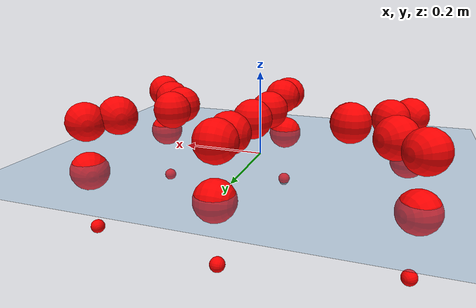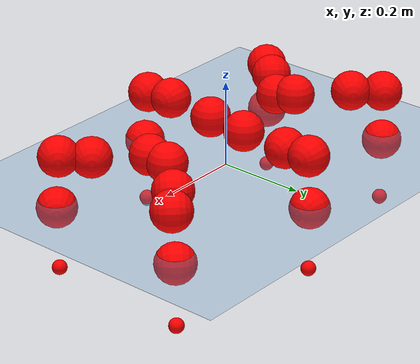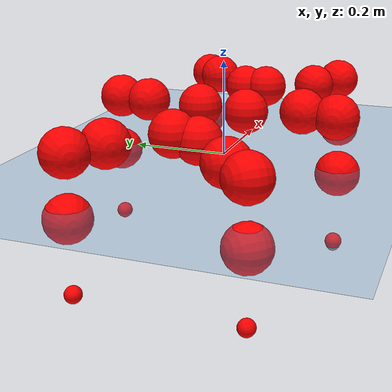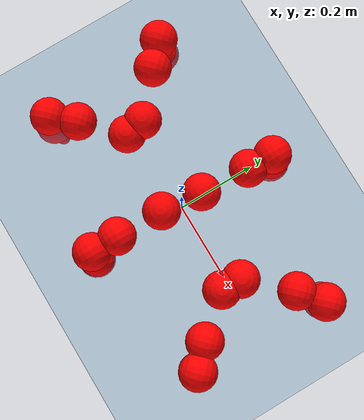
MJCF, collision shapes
<mujoco model="Golem">
  <compiler angle="radian" assetdir="assets" balanceinertia="true" inertiafromgeom="false"/>

  <option timestep="0.005" density="1.2" viscosity="2e-05"/>

  <size nkey="1"/>

  <visual>
    <quality shadowsize="8192"/>
    <map shadowclip="0.5"/>
  </visual>

  <default>
    <default class="/">
      <joint armature="0.01" damping="0.01" frictionloss="0.01"/>
      <geom contype="0" conaffinity="0" group="1" solref="-1000 -80"/>
      <site size="0.01 0.005 0.005" group="5"/>
      <general forcelimited="true" biastype="affine" gainprm="25" biasprm="0 -25 -0.5"/>
      <default class="visual">
        <geom type="mesh" group="2"/>
      </default>
      <default class="collision">
        <geom group="3"/>
      </default>
      <default class="foot">
        <geom size="0.01 0 0" condim="6" group="4" priority="1" solimp="0.015 1 0.01"/>
      </default>
      <default class="reward_collision_sphere">
        <geom group="5" rgba="1 0 0 1"/>
      </default>
    </default>
  </default>

  <asset>
    <texture type="skybox" colorspace="auto" name="//unnamed_texture_0" builtin="gradient" rgb1="0.95 0.95 0.95" rgb2="0.95 0.95 0.95" width="100" height="600"/>
    <texture type="2d" colorspace="auto" name="texplane" builtin="checker" rgb1="0.345 0.575 0.748" rgb2="0.345 0.575 0.748" markrgb="1 1 1" width="512" height="512"/>
    <material name="MatPlane" class="/" texture="texplane" texuniform="true" texrepeat="2 2" specular="0.9"/>
    <mesh name="body" class="/" file="body.stl" scale="0.001 0.001 0.001"/>
    <mesh name="coxa" class="/" file="coxa.stl" scale="0.001 0.001 0.001"/>
    <mesh name="femur" class="/" file="femur.stl" scale="0.001 0.001 0.001"/>
    <mesh name="tibia" class="/" file="tibia.stl" scale="0.001 0.001 0.001"/>
    <mesh name="tarsus" class="/" file="tarsus.stl" scale="0.001 0.001 0.001"/>
  </asset>

  <worldbody>
    <geom name="floor" class="/" size="100 100 0.125" type="plane" group="0" material="MatPlane"/>
    <light name="toplight_shadow" class="/" pos="0 0 5" dir="0.0990148 0.0990148 -0.990148" type="directional" ambient="0.04 0.04 0.04" diffuse="0.55 0.55 0.55" specular="0.12 0.12 0.12"/>
    <light name="toplight_fill" class="/" pos="0 0 5" dir="0.0990148 0.0990148 -0.990148" type="directional" castshadow="false" ambient="0.04 0.04 0.04" diffuse="0.3 0.3 0.3" specular="0.08 0.08 0.08"/>
    <body name="trunk" pos="0.0011704 0.000476749 0.00791285" quat="0.999999 0.00028969 -0.000712861 -0.000867956">
      <inertial pos="0.000982779 -0.00588591 0.00600272" quat="0.999965 -0.00386342 0.000606093 0.00745088" mass="5.22964" diaginertia="0.0482701 0.00128993 0.046115"/>
      <joint name="//unnamed_joint_0" type="free"/>
      <geom name="//unnamed_geom_1" class="/" pos="0 0 0.0884938" quat="1 0 0 0" type="mesh" rgba="0.9 0.9 0.9 1" mesh="body"/>
      <site name="imu" class="/" pos="0.191426 -0.00239589 0.105392" size="0.0114903"/>
      <camera name="track" class="/" pos="0 -1.34183 0" quat="0.707107 0.707107 0 0" mode="trackcom"/>
      <camera name="ego_camera" class="/" pos="0.18115 0 0.138272" quat="-0.5 -0.5 0.5 0.5"/>
      <body name="coxa_RR" pos="-0.240371 -0.0569736 0.0841598" quat="0.382142 -0.003887 0.00278347 -0.924091">
        <inertial pos="0.00906596 0.00385787 0.00192343" quat="0.999432 0.0327643 0.00133703 -0.00772872" mass="0.290129" diaginertia="0.0526217 0.00135906 0.0550273"/>
        <joint name="coxa_joint_RR" class="/" pos="0 0 0" axis="-0.00339482 0.0060821 -0.999976" stiffness="0.00864283" range="-3.09292 3.1622" armature="0.0116809" damping="0" frictionloss="0.00759341"/>
        <geom name="//unnamed_geom_2" class="/" type="mesh" rgba="0.2 0.2 0.2 1" mesh="coxa"/>
        <geom name="//unnamed_geom_3" class="reward_collision_sphere" size="0.0459612" pos="-0.0418038 0 0"/>
        <body name="femur_RR" pos="0.0815121 -0.00186338 -0.00526802" quat="0.499745 -0.500104 0.500164 0.499987">
          <inertial pos="-0.00233709 0.00147326 -0.00778805" quat="0.999998 0.000121612 -0.0017093 0.000536792" mass="0.311054" diaginertia="0.0542896 0.00140261 0.0573427"/>
          <joint name="femur_joint_RR" class="/" pos="0 0 0" axis="0.0231472 -0.024897 -0.999422" range="-3.14325 3.11838" armature="0.012825" damping="0.0297001" frictionloss="0.0117469"/>
          <geom name="//unnamed_geom_4" class="/" type="mesh" rgba="0.9 0.9 0.9 1" mesh="femur"/>
          <geom name="//unnamed_geom_5" class="reward_collision_sphere" size="0.0459612"/>
          <body name="tibia_RR" pos="0.00459191 -0.0713332 0.00396389" quat="0.000144796 1 -0.00010162 4.43487e-05">
            <inertial pos="0.00205122 -0.00692463 0.00786954" quat="0.999397 0.0302647 -0.00176657 -0.0169257" mass="0.305528" diaginertia="0.0586444 0.00143566 0.0528705"/>
            <joint name="tibia_joint_RR" class="/" pos="0 0 0" axis="0.00476809 -0.00598132 0.999971" stiffness="0.00758574" range="-3.14578 3.23859" armature="0.0105262" damping="0" frictionloss="0.0124469"/>
            <geom name="//unnamed_geom_6" class="/" type="mesh" rgba="0.2 0.2 0.2 1" mesh="tibia"/>
            <geom name="//unnamed_geom_7" class="reward_collision_sphere" size="0.0459612"/>
            <body name="tarsus_RR" pos="0.12115 0.0073544 0.00203355" quat="0.999993 0.00213671 0.00252295 -0.00164637">
              <inertial pos="0.0827923 0.00880472 -0.00135294" quat="0.501859 0.500771 0.496322 0.501029" mass="0.318648" diaginertia="0.0520041 0.00120152 0.0494599"/>
              <joint name="tarsus_joint_RR" class="/" pos="0 0 0" axis="0.00326071 -0.00966863 0.999948" stiffness="0.00658051" range="-3.14803 3.09826" armature="0.0121838" damping="0.0294957" frictionloss="0.0107188"/>
              <geom name="//unnamed_geom_8" class="/" type="mesh" rgba="0.9 0.9 0.9 1" mesh="tarsus"/>
              <geom name="foot_1" class="foot" size="0.01097" pos="0.156068 0 0" quat="0 -0.707107 0 0.707107"/>
              <geom name="//unnamed_geom_10" class="reward_collision_sphere" size="0.0459612"/>
              <geom name="//unnamed_geom_11" class="reward_collision_sphere" size="0.0172355" pos="0.149797 0 0"/>
              <site name="foot_1" class="foot" pos="0.156068 0 0" quat="0 -0.707107 0 0.707107" size="0.0114903"/>
            </body>
          </body>
        </body>
      </body>
      <body name="coxa_RM" pos="-0.00884236 -0.0932364 0.0918774" quat="0.706154 -0.00114054 0.00113357 -0.708056">
        <inertial pos="0.000860189 0.00375856 0.00978094" quat="0.999999 0.00103039 0.00040919 -0.00022023" mass="0.318728" diaginertia="0.0597897 0.0015758 0.0529596"/>
        <joint name="coxa_joint_RM" class="/" pos="0 0 0" axis="-0.00420779 -0.00219114 -0.999989" range="-3.15046 3.11105" armature="0.0129211" damping="0.00688816" frictionloss="0.00923004"/>
        <geom name="//unnamed_geom_12" class="/" type="mesh" rgba="0.2 0.2 0.2 1" mesh="coxa"/>
        <geom name="//unnamed_geom_13" class="reward_collision_sphere" size="0.0459612" pos="-0.0418038 0 0"/>
        <body name="femur_RM" pos="0.0777215 -0.000702639 0.0102199" quat="0.497915 -0.497465 0.50287 0.501728">
          <inertial pos="-0.000663538 0.00381908 0.00191642" quat="0.999134 -0.00899214 -0.0371272 0.0165031" mass="0.304932" diaginertia="0.0481696 0.00140492 0.0496163"/>
          <joint name="femur_joint_RM" class="/" pos="0 0 0" axis="-0.00227503 -0.00248702 -0.999994" stiffness="0.00500654" range="-3.01239 3.01058" armature="0.00614341" damping="0" frictionloss="0.0103327"/>
          <geom name="//unnamed_geom_14" class="/" type="mesh" rgba="0.9 0.9 0.9 1" mesh="femur"/>
          <geom name="//unnamed_geom_15" class="reward_collision_sphere" size="0.0459612"/>
          <body name="tibia_RM" pos="0.00479347 -0.0692903 0.000769814" quat="-0.00031646 1 0.000208504 -5.75863e-05">
            <inertial pos="0.000788307 0.00251131 0.0074955" quat="0.999532 0.0278613 -0.00233253 0.0124247" mass="0.358511" diaginertia="0.0559108 0.00146391 0.0495188"/>
            <joint name="tibia_joint_RM" class="/" pos="0 0 0" axis="0.00267755 -0.00424698 0.999987" range="-3.01772 3.26858" armature="0.015273" damping="0.0189364" frictionloss="0.0119453"/>
            <geom name="//unnamed_geom_16" class="/" type="mesh" rgba="0.2 0.2 0.2 1" mesh="tibia"/>
            <geom name="//unnamed_geom_17" class="reward_collision_sphere" size="0.0459612"/>
            <body name="tarsus_RM" pos="0.119722 0.00611931 -0.00880914" quat="1 0.000350259 -0.000722113 -0.000229829">
              <inertial pos="0.0854287 0.00157628 0.00198581" quat="0.499398 0.506932 0.479114 0.513879" mass="0.304108" diaginertia="0.0519924 0.00136439 0.0501027"/>
              <joint name="tarsus_joint_RM" class="/" pos="0 0 0" axis="-0.0022958 -0.0021268 0.999995" stiffness="0.0252714" range="-3.09944 2.93787" armature="0.0115361" damping="0.0462117" frictionloss="0.0108934"/>
              <geom name="//unnamed_geom_18" class="/" type="mesh" rgba="0.9 0.9 0.9 1" mesh="tarsus"/>
              <geom name="foot_2" class="foot" size="0.0145296" pos="0.156068 0 0" quat="0 -0.707107 0 0.707107"/>
              <geom name="//unnamed_geom_20" class="reward_collision_sphere" size="0.0459612"/>
              <geom name="//unnamed_geom_21" class="reward_collision_sphere" size="0.0172355" pos="0.149797 0 0"/>
              <site name="foot_2" class="foot" pos="0.156068 0 0" quat="0 -0.707107 0 0.707107" size="0.0114903"/>
            </body>
          </body>
        </body>
      </body>
      <body name="coxa_RF" pos="0.251412 -0.0548551 0.0937786" quat="0.924861 -0.00213705 -0.00150431 -0.380297">
        <inertial pos="-0.00761268 0.00730259 -0.00100741" quat="0.999995 0.00173605 -0.00100393 -0.00227996" mass="0.300087" diaginertia="0.0484223 0.00133566 0.052214"/>
        <joint name="coxa_joint_RF" class="/" pos="0 0 0" axis="0.0205462 0.0275725 -0.999409" range="-3.15256 3.10717" armature="0.0107064" damping="0.0251606" frictionloss="0.0122952"/>
        <geom name="//unnamed_geom_22" class="/" type="mesh" rgba="0.2 0.2 0.2 1" mesh="coxa"/>
        <geom name="//unnamed_geom_23" class="reward_collision_sphere" size="0.0459612" pos="-0.0418038 0 0"/>
        <body name="femur_RF" pos="0.0825412 -0.0101222 -0.00652483" quat="0.50198 -0.496669 0.502892 0.498434">
          <inertial pos="0.00136238 -0.00215409 0.00195996" quat="0.999861 0.00759841 -0.0137306 -0.00571162" mass="0.311074" diaginertia="0.054281 0.00142511 0.0505817"/>
          <joint name="femur_joint_RF" class="/" pos="0 0 0" axis="-0.000462523 -0.0018747 -0.999998" stiffness="0.0242485" range="-3.19076 3.07564" armature="0.010254" damping="0.00377617" frictionloss="0.0103764"/>
          <geom name="//unnamed_geom_24" class="/" type="mesh" rgba="0.9 0.9 0.9 1" mesh="femur"/>
          <geom name="//unnamed_geom_25" class="reward_collision_sphere" size="0.0459612"/>
          <body name="tibia_RF" pos="-0.00588115 -0.0711308 0.00176664" quat="0.000170955 1 -0.000266107 -0.000348638">
            <inertial pos="-0.00272721 0.00582631 0.00103162" quat="0.999965 0.00813508 -0.00172483 -0.00115184" mass="0.331704" diaginertia="0.0584726 0.00148508 0.0511271"/>
            <joint name="tibia_joint_RF" class="/" pos="0 0 0" axis="0.0100783 -0.000624809 0.999949" stiffness="0.0315262" range="-3.10151 3.26501" armature="0.0111086" damping="0.0617331" frictionloss="0.0113191"/>
            <geom name="//unnamed_geom_26" class="/" type="mesh" rgba="0.2 0.2 0.2 1" mesh="tibia"/>
            <geom name="//unnamed_geom_27" class="reward_collision_sphere" size="0.0459612"/>
            <body name="tarsus_RF" pos="0.122826 0.00741123 -0.00095983" quat="0.999997 0.000347018 -0.00139546 -0.00187613">
              <inertial pos="0.0835545 0.00189675 8.39184e-05" quat="0.501085 0.501471 0.498745 0.498692" mass="0.3071" diaginertia="0.0527718 0.00126439 0.0531077"/>
              <joint name="tarsus_joint_RF" class="/" pos="0 0 0" axis="0.000339707 -0.00732014 0.999973" range="-3.17782 3.12146" armature="0.0120243" damping="0.00310795" frictionloss="0.0105928"/>
              <geom name="//unnamed_geom_28" class="/" type="mesh" rgba="0.9 0.9 0.9 1" mesh="tarsus"/>
              <geom name="foot_3" class="foot" size="0.0107169" pos="0.156068 0 0" quat="0 -0.707107 0 0.707107"/>
              <geom name="//unnamed_geom_30" class="reward_collision_sphere" size="0.0459612"/>
              <geom name="//unnamed_geom_31" class="reward_collision_sphere" size="0.0172355" pos="0.149797 0 0"/>
              <site name="foot_3" class="foot" pos="0.156068 0 0" quat="0 -0.707107 0 0.707107" size="0.0114903"/>
            </body>
          </body>
        </body>
      </body>
      <body name="coxa_LR" pos="-0.24787 0.0501227 0.0947512" quat="0.382606 5.86858e-05 2.74978e-05 0.923912">
        <inertial pos="-0.000937017 0.00101336 0.00537039" quat="0.999708 -0.0144656 -0.000308398 -0.0193648" mass="0.343908" diaginertia="0.0586183 0.00140181 0.0551076"/>
        <joint name="coxa_joint_LR" class="/" pos="0 0 0" axis="0.0274597 0.01355 -0.999531" range="-3.1616 3.1105" armature="0.010718" damping="0.010479" frictionloss="0.00829403"/>
        <geom name="//unnamed_geom_32" class="/" type="mesh" rgba="0.2 0.2 0.2 1" mesh="coxa"/>
        <geom name="//unnamed_geom_33" class="reward_collision_sphere" size="0.0459612" pos="-0.0418038 0 0"/>
        <body name="femur_LR" pos="0.0885985 0.00890225 0.000635312" quat="0.50172 -0.499113 0.500424 0.498737">
          <inertial pos="-0.002162 0.00211078 0.00908436" quat="0.999906 0.00842506 -0.0081833 -0.00711852" mass="0.319749" diaginertia="0.0576265 0.00147685 0.0541314"/>
          <joint name="femur_joint_LR" class="/" pos="0 0 0" axis="0.0460967 -0.00290966 0.998933" stiffness="0.004035" range="-3.12885 3.14643" armature="0.00926593" damping="0" frictionloss="0.010556"/>
          <geom name="//unnamed_geom_34" class="/" type="mesh" rgba="0.9 0.9 0.9 1" mesh="femur"/>
          <geom name="//unnamed_geom_35" class="reward_collision_sphere" size="0.0459612"/>
          <body name="tibia_LR" pos="0.00565312 -0.0740211 0.00454431" quat="3.68492e-05 1 -0.000838878 -0.000214978">
            <inertial pos="-0.0016273 -0.00696384 -0.00216682" quat="0.999995 0.000635502 0.00231586 -0.00190668" mass="0.288278" diaginertia="0.0551608 0.00127942 0.0444181"/>
            <joint name="tibia_joint_LR" class="/" pos="0 0 0" axis="-0.0157178 -0.047847 -0.998731" range="-3.26149 3.3421" armature="0.00602229" damping="0.0457012" frictionloss="0.00891119"/>
            <geom name="//unnamed_geom_36" class="/" type="mesh" rgba="0.2 0.2 0.2 1" mesh="tibia"/>
            <geom name="//unnamed_geom_37" class="reward_collision_sphere" size="0.0459612"/>
            <body name="tarsus_LR" pos="0.122695 0.00189035 0.000983455" quat="1 0.000101625 5.22469e-05 -7.03119e-05">
              <inertial pos="0.0745223 -0.00134429 0.0101853" quat="0.500025 0.499498 0.499269 0.501206" mass="0.303723" diaginertia="0.0483784 0.00131083 0.0502256"/>
              <joint name="tarsus_joint_LR" class="/" pos="0 0 0" axis="-0.0022561 0.0121553 -0.999924" range="-3.21444 3.20416" armature="0.014641" damping="0" frictionloss="0.0111903"/>
              <geom name="//unnamed_geom_38" class="/" type="mesh" rgba="0.9 0.9 0.9 1" mesh="tarsus"/>
              <geom name="foot_4" class="foot" size="0.0120963" pos="0.156068 0 0" quat="0.707107 0 -0.707107 0"/>
              <geom name="//unnamed_geom_40" class="reward_collision_sphere" size="0.0459612"/>
              <geom name="//unnamed_geom_41" class="reward_collision_sphere" size="0.0172355" pos="0.149797 0 0"/>
              <site name="foot_4" class="foot" pos="0.156068 0 0" quat="0.707107 0 -0.707107 0" size="0.0114903"/>
            </body>
          </body>
        </body>
      </body>
      <body name="coxa_LM" pos="0.0010716 0.0942487 0.0930622" quat="0.707061 -0.000186084 9.37365e-05 0.707153">
        <inertial pos="0.000349037 0.00760295 -0.00945837" quat="0.999929 -0.000212 -0.010765 0.00509272" mass="0.287115" diaginertia="0.0527022 0.00134433 0.0513695"/>
        <joint name="coxa_joint_LM" class="/" pos="0 0 0" axis="0.0306317 -0.00443364 -0.999521" range="-3.1769 3.15657" armature="0.0168227" damping="0" frictionloss="0.0111227"/>
        <geom name="//unnamed_geom_42" class="/" type="mesh" rgba="0.2 0.2 0.2 1" mesh="coxa"/>
        <geom name="//unnamed_geom_43" class="reward_collision_sphere" size="0.0459612" pos="-0.0418038 0 0"/>
        <body name="femur_LM" pos="0.0814879 -0.00840937 0.00108686" quat="0.499845 -0.499806 0.499787 0.500561">
          <inertial pos="0.00890184 -0.00368539 0.00400466" quat="0.999948 0.00442762 0.0039216 0.00831436" mass="0.326377" diaginertia="0.0580878 0.00143593 0.0558633"/>
          <joint name="femur_joint_LM" class="/" pos="0 0 0" axis="0.0386359 0.0100013 0.999203" range="-3.13123 3.14471" armature="0.0108586" damping="0.0199651" frictionloss="0.00818181"/>
          <geom name="//unnamed_geom_44" class="/" type="mesh" rgba="0.9 0.9 0.9 1" mesh="femur"/>
          <geom name="//unnamed_geom_45" class="reward_collision_sphere" size="0.0459612"/>
          <body name="tibia_LM" pos="-0.00268928 -0.0659825 -0.00195612" quat="6.31119e-06 1 -6.7183e-05 4.90742e-06">
            <inertial pos="0.000881417 0.00158905 -0.00506818" quat="0.999583 0.0168159 0.0229886 0.00485137" mass="0.329707" diaginertia="0.0518297 0.00135172 0.0535901"/>
            <joint name="tibia_joint_LM" class="/" pos="0 0 0" axis="0.00242612 -0.00123022 -0.999996" range="-3.10252 2.996" armature="0.0125236" damping="0.021543" frictionloss="0.0103901"/>
            <geom name="//unnamed_geom_46" class="/" type="mesh" rgba="0.2 0.2 0.2 1" mesh="tibia"/>
            <geom name="//unnamed_geom_47" class="reward_collision_sphere" size="0.0459612"/>
            <body name="tarsus_LM" pos="0.12264 0.00753205 0.00233815" quat="1 0.000202887 -8.81038e-05 -0.000193766">
              <inertial pos="0.0752744 0.00105645 0.00074789" quat="0.500168 0.499075 0.500251 0.500505" mass="0.304592" diaginertia="0.0510697 0.00132675 0.0461384"/>
              <joint name="tarsus_joint_LM" class="/" pos="0 0 0" axis="0.00871144 -0.00614771 -0.999943" stiffness="0.0285826" range="-3.181 3.10055" armature="0.0123291" damping="0.0427634" frictionloss="0.0114372"/>
              <geom name="//unnamed_geom_48" class="/" type="mesh" rgba="0.9 0.9 0.9 1" mesh="tarsus"/>
              <geom name="foot_5" class="foot" size="0.0119417" pos="0.156068 0 0" quat="0.707107 0 -0.707107 0"/>
              <geom name="//unnamed_geom_50" class="reward_collision_sphere" size="0.0459612"/>
              <geom name="//unnamed_geom_51" class="reward_collision_sphere" size="0.0172355" pos="0.149797 0 0"/>
              <site name="foot_5" class="foot" pos="0.156068 0 0" quat="0.707107 0 -0.707107 0" size="0.0114903"/>
            </body>
          </body>
        </body>
      </body>
      <body name="coxa_LF" pos="0.252688 0.05497 0.0911387" quat="0.923782 -0.000840998 -0.000317204 0.382917">
        <inertial pos="-0.00542678 -0.002371 -0.00052889" quat="0.999195 0.0152427 0.033837 -0.0152263" mass="0.312662" diaginertia="0.0462748 0.00137397 0.0505415"/>
        <joint name="coxa_joint_LF" class="/" pos="0 0 0" axis="0.000276606 -0.000180219 -1" range="-3.10728 3.28187" armature="0.0129939" damping="0.013483" frictionloss="0.0103336"/>
        <geom name="//unnamed_geom_52" class="/" type="mesh" rgba="0.2 0.2 0.2 1" mesh="coxa"/>
        <geom name="//unnamed_geom_53" class="reward_collision_sphere" size="0.0459612" pos="-0.0418038 0 0"/>
        <body name="femur_LF" pos="0.0905349 0.00476746 0.0019504" quat="0.500158 -0.49963 0.499886 0.500325">
          <inertial pos="0.00624982 -0.00504016 -0.00196997" quat="0.999971 -0.00251054 0.00676128 -0.00229538" mass="0.305892" diaginertia="0.0568405 0.00139808 0.0509152"/>
          <joint name="femur_joint_LF" class="/" pos="0 0 0" axis="-0.0392977 0.000592471 0.999227" stiffness="0.0220584" range="-2.99168 3.17816" armature="0.0114785" damping="0.030043" frictionloss="0.0116604"/>
          <geom name="//unnamed_geom_54" class="/" type="mesh" rgba="0.9 0.9 0.9 1" mesh="femur"/>
          <geom name="//unnamed_geom_55" class="reward_collision_sphere" size="0.0459612"/>
          <body name="tibia_LF" pos="0.0084942 -0.0732635 -0.00736153" quat="0.00187876 0.999997 -0.000754384 0.00135732">
            <inertial pos="0.00600976 0.00041949 -0.00131209" quat="0.998751 -0.0409336 -0.0277966 0.00687851" mass="0.269089" diaginertia="0.0550599 0.00138095 0.0506639"/>
            <joint name="tibia_joint_LF" class="/" pos="0 0 0" axis="0.00374325 -0.00212079 -0.999991" stiffness="0.0191791" range="-3.15273 3.09889" armature="0.012744" damping="0.0367919" frictionloss="0.0107579"/>
            <geom name="//unnamed_geom_56" class="/" type="mesh" rgba="0.2 0.2 0.2 1" mesh="tibia"/>
            <geom name="//unnamed_geom_57" class="reward_collision_sphere" size="0.0459612"/>
            <body name="tarsus_LF" pos="0.119313 0.00589939 -0.00584725" quat="1 6.38408e-05 8.86444e-05 0.000598496">
              <inertial pos="0.086941 -0.000815876 0.00347559" quat="0.499742 0.500512 0.498313 0.501428" mass="0.365206" diaginertia="0.0570406 0.00150987 0.0545626"/>
              <joint name="tarsus_joint_LF" class="/" pos="0 0 0" axis="0.00414643 -0.0026861 -0.999988" stiffness="0.0179692" range="-3.14335 3.08434" armature="0.0129561" damping="0" frictionloss="0.012584"/>
              <geom name="//unnamed_geom_58" class="/" type="mesh" rgba="0.9 0.9 0.9 1" mesh="tarsus"/>
              <geom name="foot_6" class="foot" size="0.00951758" pos="0.156068 0 0" quat="0.707107 0 -0.707107 0"/>
              <geom name="//unnamed_geom_60" class="reward_collision_sphere" size="0.0459612"/>
              <geom name="//unnamed_geom_61" class="reward_collision_sphere" size="0.0172355" pos="0.149797 0 0"/>
              <site name="foot_6" class="foot" pos="0.156068 0 0" quat="0.707107 0 -0.707107 0" size="0.0114903"/>
            </body>
          </body>
        </body>
      </body>
    </body>
  </worldbody>

  <contact>
    <pair class="/" geom1="floor" geom2="foot_1" name="//unnamed_contact_0"/>
    <pair class="/" geom1="floor" geom2="foot_2" name="//unnamed_contact_1"/>
    <pair class="/" geom1="floor" geom2="foot_3" name="//unnamed_contact_2"/>
    <pair class="/" geom1="floor" geom2="foot_4" name="//unnamed_contact_3"/>
    <pair class="/" geom1="floor" geom2="foot_5" name="//unnamed_contact_4"/>
    <pair class="/" geom1="floor" geom2="foot_6" name="//unnamed_contact_5"/>
  </contact>

  <actuator>
    <general name="coxa_joint_RR" class="/" joint="coxa_joint_RR" forcerange="-7.74875 7.74875" gainprm="27.8839" biasprm="0 -27.8839 -0.505073"/>
    <general name="femur_joint_RR" class="/" joint="femur_joint_RR" forcerange="-7.1479 7.1479" gainprm="27.8839" biasprm="0 -27.8839 -0.505073"/>
    <general name="tibia_joint_RR" class="/" joint="tibia_joint_RR" forcerange="-10.5384 10.5384" gainprm="27.8839" biasprm="0 -27.8839 -0.505073"/>
    <general name="tarsus_joint_RR" class="/" joint="tarsus_joint_RR" forcerange="-7.96067 7.96067" gainprm="27.8839" biasprm="0 -27.8839 -0.505073"/>
    <general name="coxa_joint_RM" class="/" joint="coxa_joint_RM" forcerange="-5.20762 5.20762" gainprm="27.8839" biasprm="0 -27.8839 -0.505073"/>
    <general name="femur_joint_RM" class="/" joint="femur_joint_RM" forcerange="-7.74775 7.74775" gainprm="27.8839" biasprm="0 -27.8839 -0.505073"/>
    <general name="tibia_joint_RM" class="/" joint="tibia_joint_RM" forcerange="-7.89406 7.89406" gainprm="27.8839" biasprm="0 -27.8839 -0.505073"/>
    <general name="tarsus_joint_RM" class="/" joint="tarsus_joint_RM" forcerange="-10.5595 10.5595" gainprm="27.8839" biasprm="0 -27.8839 -0.505073"/>
    <general name="coxa_joint_RF" class="/" joint="coxa_joint_RF" forcerange="-6.45177 6.45177" gainprm="27.8839" biasprm="0 -27.8839 -0.505073"/>
    <general name="femur_joint_RF" class="/" joint="femur_joint_RF" forcerange="-8.23252 8.23252" gainprm="27.8839" biasprm="0 -27.8839 -0.505073"/>
    <general name="tibia_joint_RF" class="/" joint="tibia_joint_RF" forcerange="-7.86633 7.86633" gainprm="27.8839" biasprm="0 -27.8839 -0.505073"/>
    <general name="tarsus_joint_RF" class="/" joint="tarsus_joint_RF" forcerange="-8.47539 8.47539" gainprm="27.8839" biasprm="0 -27.8839 -0.505073"/>
    <general name="coxa_joint_LR" class="/" joint="coxa_joint_LR" forcerange="-5.90986 5.90986" gainprm="27.8839" biasprm="0 -27.8839 -0.505073"/>
    <general name="femur_joint_LR" class="/" joint="femur_joint_LR" forcerange="-8.33383 8.33383" gainprm="27.8839" biasprm="0 -27.8839 -0.505073"/>
    <general name="tibia_joint_LR" class="/" joint="tibia_joint_LR" forcerange="-6.75525 6.75525" gainprm="27.8839" biasprm="0 -27.8839 -0.505073"/>
    <general name="tarsus_joint_LR" class="/" joint="tarsus_joint_LR" forcerange="-5.70645 5.70645" gainprm="27.8839" biasprm="0 -27.8839 -0.505073"/>
    <general name="coxa_joint_LM" class="/" joint="coxa_joint_LM" forcerange="-10.4629 10.4629" gainprm="27.8839" biasprm="0 -27.8839 -0.505073"/>
    <general name="femur_joint_LM" class="/" joint="femur_joint_LM" forcerange="-8.258 8.258" gainprm="27.8839" biasprm="0 -27.8839 -0.505073"/>
    <general name="tibia_joint_LM" class="/" joint="tibia_joint_LM" forcerange="-6.03436 6.03436" gainprm="27.8839" biasprm="0 -27.8839 -0.505073"/>
    <general name="tarsus_joint_LM" class="/" joint="tarsus_joint_LM" forcerange="-5.31868 5.31868" gainprm="27.8839" biasprm="0 -27.8839 -0.505073"/>
    <general name="coxa_joint_LF" class="/" joint="coxa_joint_LF" forcerange="-9.95016 9.95016" gainprm="27.8839" biasprm="0 -27.8839 -0.505073"/>
    <general name="femur_joint_LF" class="/" joint="femur_joint_LF" forcerange="-9.86391 9.86391" gainprm="27.8839" biasprm="0 -27.8839 -0.505073"/>
    <general name="tibia_joint_LF" class="/" joint="tibia_joint_LF" forcerange="-8.56809 8.56809" gainprm="27.8839" biasprm="0 -27.8839 -0.505073"/>
    <general name="tarsus_joint_LF" class="/" joint="tarsus_joint_LF" forcerange="-9.09861 9.09861" gainprm="27.8839" biasprm="0 -27.8839 -0.505073"/>
  </actuator>

  <sensor>
    <gyro site="imu" name="imu_angular_velocity"/>
    <velocimeter site="imu" name="imu_linear_velocity"/>
    <framelinvel objtype="site" objname="foot_1" name="foot_1_global_linear_velocity"/>
    <framelinvel objtype="site" objname="foot_2" name="foot_2_global_linear_velocity"/>
    <framelinvel objtype="site" objname="foot_3" name="foot_3_global_linear_velocity"/>
    <framelinvel objtype="site" objname="foot_4" name="foot_4_global_linear_velocity"/>
    <framelinvel objtype="site" objname="foot_5" name="foot_5_global_linear_velocity"/>
    <framelinvel objtype="site" objname="foot_6" name="foot_6_global_linear_velocity"/>
  </sensor>

  <keyframe>
    <key name="home" qpos="0 0 0.1457 1 0 0 0 0 0 0 0 0 0 0 0 0 0 0 0 0 0 0 0 0 0 0 0 0 0 0 0"/>
  </keyframe>
</mujoco>
